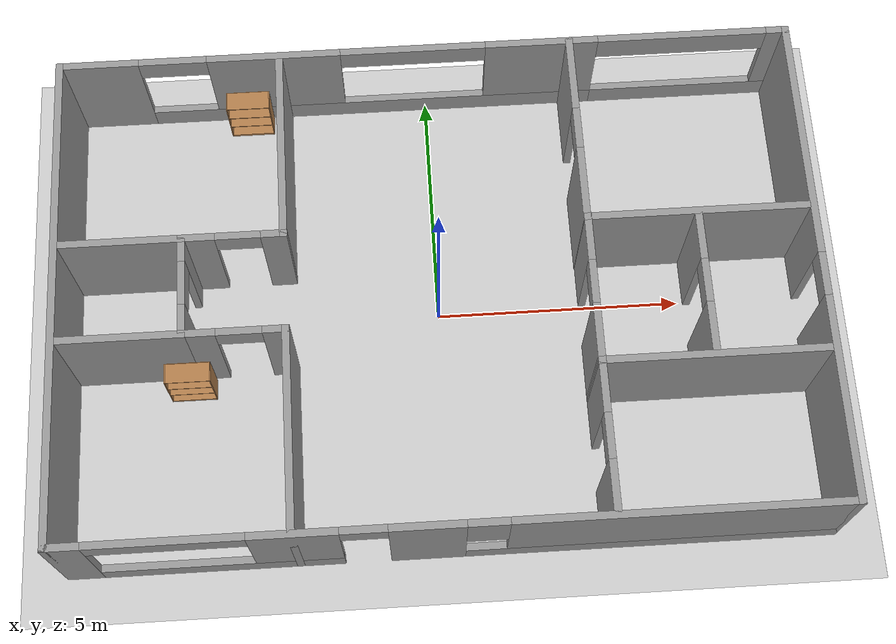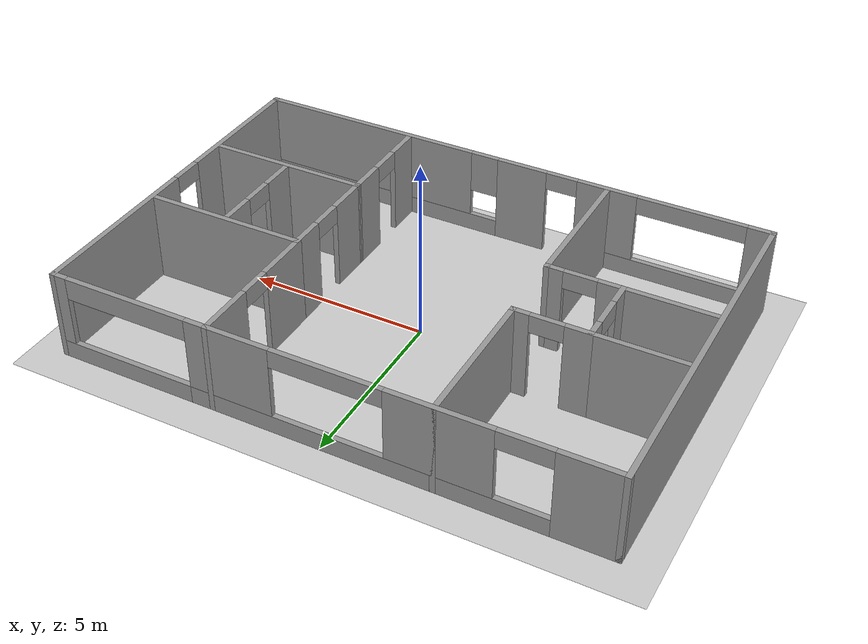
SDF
<sdf version="1.7">
 <world name="default">
  <light name="sun" type="directional">
   <pose>0 0 10 0 -0 0</pose>
   <diffuse>0.8 0.8 0.8 1</diffuse>
   <specular>0.2 0.2 0.2 1</specular>
   <attenuation>
    <range>1000</range>
    <constant>0.9</constant>
    <linear>0.01</linear>
    <quadratic>0.001</quadratic>
   </attenuation>
   <direction>-0.5 0.1 -0.9</direction>
   <spot><inner_angle>0</inner_angle><outer_angle>0</outer_angle><falloff>0</falloff></spot>
  </light>
  <model name="ground_plane">
   <static>1</static>
   <link name="link">
    <collision name="collision">
     <geometry><plane><normal>0 0 1</normal><size>100 100</size></plane></geometry>
     <surface><friction><ode><mu>100</mu><mu2>50</mu2></ode></friction></surface>
    </collision>
    <visual name="visual">
     <cast_shadows>0</cast_shadows>
     <geometry><plane><normal>0 0 1</normal><size>100 100</size></plane></geometry>
     <material>
      <script><uri>file://media/materials/scripts/gazebo.material</uri><name>Gazebo/Grey</name></script>
     </material>
    </visual>
   </link>
  </model>
  <gravity>0 0 -9.8</gravity>
  <magnetic_field>6e-06 2.3e-05 -4.2e-05</magnetic_field>
  <atmosphere type="adiabatic"/>
  <physics type="ode">
   <max_step_size>0.001</max_step_size>
   <real_time_factor>1</real_time_factor>
   <real_time_update_rate>1000</real_time_update_rate>
  </physics>
  <scene><ambient>0.4 0.4 0.4 1</ambient><background>0.7 0.7 0.7 1</background><shadows>1</shadows></scene>
  <audio><device>default</device></audio>
  <spherical_coordinates>
   <surface_model>EARTH_WGS84</surface_model>
   <latitude_deg>0</latitude_deg>
   <longitude_deg>0</longitude_deg>
   <elevation>0</elevation>
   <heading_deg>0</heading_deg>
  </spherical_coordinates>
  <model name="my_room_world">
   <link name="Wall_1">
    <pose>7.5 0 0 0 -0 -1.5708</pose>
    <visual name="Wall_1_Visual_0">
     <pose>-2.52061 0 1.25 0 -0 0</pose>
     <geometry><box><size>5.10878 0.15 2.5</size></box></geometry>
     <material>
      <script><uri>file://media/materials/scripts/gazebo.material</uri><name>Gazebo/Grey</name></script>
      <ambient>1 1 1 1</ambient>
     </material>
     <meta><layer>0</layer></meta>
    </visual>
    <collision name="Wall_1_Collision_0">
     <geometry><box><size>5.10878 0.15 2.5</size></box></geometry>
     <pose>-2.52061 0 1.25 0 -0 0</pose>
    </collision>
    <visual name="Wall_1_Visual_1">
     <pose>3.00439 0 1.25 0 -0 0</pose>
     <geometry><box><size>4.14122 0.15 2.5</size></box></geometry>
     <material>
      <script><uri>file://media/materials/scripts/gazebo.material</uri><name>Gazebo/Grey</name></script>
      <ambient>1 1 1 1</ambient>
     </material>
     <meta><layer>0</layer></meta>
    </visual>
    <collision name="Wall_1_Collision_1">
     <geometry><box><size>4.14122 0.15 2.5</size></box></geometry>
     <pose>3.00439 0 1.25 0 -0 0</pose>
    </collision>
    <visual name="Wall_1_Visual_2">
     <pose>0.483781 0 2.25 0 -0 0</pose>
     <geometry><box><size>0.9 0.15 0.5</size></box></geometry>
     <material>
      <script><uri>file://media/materials/scripts/gazebo.material</uri><name>Gazebo/Grey</name></script>
      <ambient>1 1 1 1</ambient>
     </material>
     <meta><layer>0</layer></meta>
    </visual>
    <collision name="Wall_1_Collision_2">
     <geometry><box><size>0.9 0.15 0.5</size></box></geometry>
     <pose>0.483781 0 2.25 0 -0 0</pose>
    </collision>
   </link>
   <link name="Wall_21">
    <pose>0 -5 0 0 -0 0</pose>
    <visual name="Wall_21_Visual_0">
     <pose>-7.20434 0 1.25 0 -0 0</pose>
     <geometry><box><size>0.74133 0.15 2.5</size></box></geometry>
     <material>
      <script><uri>file://media/materials/scripts/gazebo.material</uri><name>Gazebo/Grey</name></script>
      <ambient>1 1 1 1</ambient>
     </material>
     <meta><layer>0</layer></meta>
    </visual>
    <collision name="Wall_21_Collision_0">
     <geometry><box><size>0.74133 0.15 2.5</size></box></geometry>
     <pose>-7.20434 0 1.25 0 -0 0</pose>
    </collision>
    <visual name="Wall_21_Visual_1">
     <pose>-0.494456 0 1.25 0 -0 0</pose>
     <geometry><box><size>1.45597 0.15 2.5</size></box></geometry>
     <material>
      <script><uri>file://media/materials/scripts/gazebo.material</uri><name>Gazebo/Grey</name></script>
      <ambient>1 1 1 1</ambient>
     </material>
     <meta><layer>0</layer></meta>
    </visual>
    <collision name="Wall_21_Collision_1">
     <geometry><box><size>1.45597 0.15 2.5</size></box></geometry>
     <pose>-0.494456 0 1.25 0 -0 0</pose>
    </collision>
    <visual name="Wall_21_Visual_2">
     <pose>-4.47806 0 0.25 0 -0 0</pose>
     <geometry><box><size>4.71123 0.15 0.5</size></box></geometry>
     <material>
      <script><uri>file://media/materials/scripts/gazebo.material</uri><name>Gazebo/Grey</name></script>
      <ambient>1 1 1 1</ambient>
     </material>
     <meta><layer>0</layer></meta>
    </visual>
    <collision name="Wall_21_Collision_2">
     <geometry><box><size>4.71123 0.15 0.5</size></box></geometry>
     <pose>-4.47806 0 0.25 0 -0 0</pose>
    </collision>
    <visual name="Wall_21_Visual_3">
     <pose>3.90426 0 0.25 0 -0 0</pose>
     <geometry><box><size>7.34147 0.15 0.5</size></box></geometry>
     <material>
      <script><uri>file://media/materials/scripts/gazebo.material</uri><name>Gazebo/Grey</name></script>
      <ambient>1 1 1 1</ambient>
     </material>
     <meta><layer>0</layer></meta>
    </visual>
    <collision name="Wall_21_Collision_3">
     <geometry><box><size>7.34147 0.15 0.5</size></box></geometry>
     <pose>3.90426 0 0.25 0 -0 0</pose>
    </collision>
    <visual name="Wall_21_Visual_4">
     <pose>-2.97805 0 1.5 0 -0 0</pose>
     <geometry><box><size>1.71123 0.15 2</size></box></geometry>
     <material>
      <script><uri>file://media/materials/scripts/gazebo.material</uri><name>Gazebo/Grey</name></script>
      <ambient>1 1 1 1</ambient>
     </material>
     <meta><layer>0</layer></meta>
    </visual>
    <collision name="Wall_21_Collision_4">
     <geometry><box><size>1.71123 0.15 2</size></box></geometry>
     <pose>-2.97805 0 1.5 0 -0 0</pose>
    </collision>
    <visual name="Wall_21_Visual_5">
     <pose>-2.97805 0 1.5 0 -0 0</pose>
     <geometry><box><size>1.71123 0.15 2</size></box></geometry>
     <material>
      <script><uri>file://media/materials/scripts/gazebo.material</uri><name>Gazebo/Grey</name></script>
      <ambient>1 1 1 1</ambient>
     </material>
     <meta><layer>0</layer></meta>
    </visual>
    <collision name="Wall_21_Collision_5">
     <geometry><box><size>1.71123 0.15 2</size></box></geometry>
     <pose>-2.97805 0 1.5 0 -0 0</pose>
    </collision>
    <visual name="Wall_21_Visual_6">
     <pose>4.30426 0 1.5 0 -0 0</pose>
     <geometry><box><size>6.54147 0.15 2</size></box></geometry>
     <material>
      <script><uri>file://media/materials/scripts/gazebo.material</uri><name>Gazebo/Grey</name></script>
      <ambient>1 1 1 1</ambient>
     </material>
     <meta><layer>0</layer></meta>
    </visual>
    <collision name="Wall_21_Collision_6">
     <geometry><box><size>6.54147 0.15 2</size></box></geometry>
     <pose>4.30426 0 1.5 0 -0 0</pose>
    </collision>
    <visual name="Wall_21_Visual_7">
     <pose>0.633528 0 1.9 0 -0 0</pose>
     <geometry><box><size>0.8 0.15 1.2</size></box></geometry>
     <material>
      <script><uri>file://media/materials/scripts/gazebo.material</uri><name>Gazebo/Grey</name></script>
      <ambient>1 1 1 1</ambient>
     </material>
     <meta><layer>0</layer></meta>
    </visual>
    <collision name="Wall_21_Collision_7">
     <geometry><box><size>0.8 0.15 1.2</size></box></geometry>
     <pose>0.633528 0 1.9 0 -0 0</pose>
    </collision>
    <visual name="Wall_21_Visual_8">
     <pose>-5.33367 0 2.25 0 -0 0</pose>
     <geometry><box><size>3 0.15 0.5</size></box></geometry>
     <material>
      <script><uri>file://media/materials/scripts/gazebo.material</uri><name>Gazebo/Grey</name></script>
      <ambient>1 1 1 1</ambient>
     </material>
     <meta><layer>0</layer></meta>
    </visual>
    <collision name="Wall_21_Collision_8">
     <geometry><box><size>3 0.15 0.5</size></box></geometry>
     <pose>-5.33367 0 2.25 0 -0 0</pose>
    </collision>
    <visual name="Wall_21_Visual_9">
     <pose>-1.67244 0 2.25 0 -0 0</pose>
     <geometry><box><size>0.9 0.15 0.5</size></box></geometry>
     <material>
      <script><uri>file://media/materials/scripts/gazebo.material</uri><name>Gazebo/Grey</name></script>
      <ambient>1 1 1 1</ambient>
     </material>
     <meta><layer>0</layer></meta>
    </visual>
    <collision name="Wall_21_Collision_9">
     <geometry><box><size>0.9 0.15 0.5</size></box></geometry>
     <pose>-1.67244 0 2.25 0 -0 0</pose>
    </collision>
    <visual name="Wall_21_Visual_10">
     <pose>-1.67244 0 2.25 0 -0 0</pose>
     <geometry><box><size>0.9 0.15 0.5</size></box></geometry>
     <material>
      <script><uri>file://media/materials/scripts/gazebo.material</uri><name>Gazebo/Grey</name></script>
      <ambient>1 1 1 1</ambient>
     </material>
     <meta><layer>0</layer></meta>
    </visual>
    <collision name="Wall_21_Collision_10">
     <geometry><box><size>0.9 0.15 0.5</size></box></geometry>
     <pose>-1.67244 0 2.25 0 -0 0</pose>
    </collision>
   </link>
   <link name="Wall_23">
    <pose>0 5 0 0 -0 0</pose>
    <visual name="Wall_23_Visual_0">
     <pose>-6.73138 0 1.25 0 -0 0</pose>
     <geometry><box><size>1.68723 0.15 2.5</size></box></geometry>
     <material>
      <script><uri>file://media/materials/scripts/gazebo.material</uri><name>Gazebo/Grey</name></script>
      <ambient>1 1 1 1</ambient>
     </material>
     <meta><layer>0</layer></meta>
    </visual>
    <collision name="Wall_23_Collision_0">
     <geometry><box><size>1.68723 0.15 2.5</size></box></geometry>
     <pose>-6.73138 0 1.25 0 -0 0</pose>
    </collision>
    <visual name="Wall_23_Visual_1">
     <pose>-1.1449 0 0.25 0 -0 0</pose>
     <geometry><box><size>9.48573 0.15 0.5</size></box></geometry>
     <material>
      <script><uri>file://media/materials/scripts/gazebo.material</uri><name>Gazebo/Grey</name></script>
      <ambient>1 1 1 1</ambient>
     </material>
     <meta><layer>0</layer></meta>
    </visual>
    <collision name="Wall_23_Collision_1">
     <geometry><box><size>9.48573 0.15 0.5</size></box></geometry>
     <pose>-1.1449 0 0.25 0 -0 0</pose>
    </collision>
    <visual name="Wall_23_Visual_2">
     <pose>5.58648 0 0.25 0 -0 0</pose>
     <geometry><box><size>3.97704 0.15 0.5</size></box></geometry>
     <material>
      <script><uri>file://media/materials/scripts/gazebo.material</uri><name>Gazebo/Grey</name></script>
      <ambient>1 1 1 1</ambient>
     </material>
     <meta><layer>0</layer></meta>
    </visual>
    <collision name="Wall_23_Collision_2">
     <geometry><box><size>3.97704 0.15 0.5</size></box></geometry>
     <pose>5.58648 0 0.25 0 -0 0</pose>
    </collision>
    <visual name="Wall_23_Visual_3">
     <pose>7.33648 0 1.5 0 -0 0</pose>
     <geometry><box><size>0.477036 0.15 2</size></box></geometry>
     <material>
      <script><uri>file://media/materials/scripts/gazebo.material</uri><name>Gazebo/Grey</name></script>
      <ambient>1 1 1 1</ambient>
     </material>
     <meta><layer>0</layer></meta>
    </visual>
    <collision name="Wall_23_Collision_3">
     <geometry><box><size>0.477036 0.15 2</size></box></geometry>
     <pose>7.33648 0 1.5 0 -0 0</pose>
    </collision>
    <visual name="Wall_23_Visual_4">
     <pose>-3.11255 0 1.5 0 -0 0</pose>
     <geometry><box><size>2.75044 0.15 2</size></box></geometry>
     <material>
      <script><uri>file://media/materials/scripts/gazebo.material</uri><name>Gazebo/Grey</name></script>
      <ambient>1 1 1 1</ambient>
     </material>
     <meta><layer>0</layer></meta>
    </visual>
    <collision name="Wall_23_Collision_4">
     <geometry><box><size>2.75044 0.15 2</size></box></geometry>
     <pose>-3.11255 0 1.5 0 -0 0</pose>
    </collision>
    <visual name="Wall_23_Visual_5">
     <pose>2.43032 0 1.5 0 -0 0</pose>
     <geometry><box><size>2.33529 0.15 2</size></box></geometry>
     <material>
      <script><uri>file://media/materials/scripts/gazebo.material</uri><name>Gazebo/Grey</name></script>
      <ambient>1 1 1 1</ambient>
     </material>
     <meta><layer>0</layer></meta>
    </visual>
    <collision name="Wall_23_Collision_5">
     <geometry><box><size>2.33529 0.15 2</size></box></geometry>
     <pose>2.43032 0 1.5 0 -0 0</pose>
    </collision>
    <visual name="Wall_23_Visual_6">
     <pose>2.43032 0 1.5 0 -0 0</pose>
     <geometry><box><size>2.33529 0.15 2</size></box></geometry>
     <material>
      <script><uri>file://media/materials/scripts/gazebo.material</uri><name>Gazebo/Grey</name></script>
      <ambient>1 1 1 1</ambient>
     </material>
     <meta><layer>0</layer></meta>
    </visual>
    <collision name="Wall_23_Collision_6">
     <geometry><box><size>2.33529 0.15 2</size></box></geometry>
     <pose>2.43032 0 1.5 0 -0 0</pose>
    </collision>
    <visual name="Wall_23_Visual_7">
     <pose>5.34796 0 2.2 0 -0 0</pose>
     <geometry><box><size>3.5 0.15 0.6</size></box></geometry>
     <material>
      <script><uri>file://media/materials/scripts/gazebo.material</uri><name>Gazebo/Grey</name></script>
      <ambient>1 1 1 1</ambient>
     </material>
     <meta><layer>0</layer></meta>
    </visual>
    <collision name="Wall_23_Collision_7">
     <geometry><box><size>3.5 0.15 0.6</size></box></geometry>
     <pose>5.34796 0 2.2 0 -0 0</pose>
    </collision>
    <visual name="Wall_23_Visual_8">
     <pose>5.34796 0 2.2 0 -0 0</pose>
     <geometry><box><size>3.5 0.15 0.6</size></box></geometry>
     <material>
      <script><uri>file://media/materials/scripts/gazebo.material</uri><name>Gazebo/Grey</name></script>
      <ambient>1 1 1 1</ambient>
     </material>
     <meta><layer>0</layer></meta>
    </visual>
    <collision name="Wall_23_Collision_8">
     <geometry><box><size>3.5 0.15 0.6</size></box></geometry>
     <pose>5.34796 0 2.2 0 -0 0</pose>
    </collision>
    <visual name="Wall_23_Visual_9">
     <pose>-5.18777 0 2.25 0 -0 0</pose>
     <geometry><box><size>1.4 0.15 0.5</size></box></geometry>
     <material>
      <script><uri>file://media/materials/scripts/gazebo.material</uri><name>Gazebo/Grey</name></script>
      <ambient>1 1 1 1</ambient>
     </material>
     <meta><layer>0</layer></meta>
    </visual>
    <collision name="Wall_23_Collision_9">
     <geometry><box><size>1.4 0.15 0.5</size></box></geometry>
     <pose>-5.18777 0 2.25 0 -0 0</pose>
    </collision>
    <visual name="Wall_23_Visual_10">
     <pose>-0.237327 0 2.25 0 -0 0</pose>
     <geometry><box><size>3 0.15 0.5</size></box></geometry>
     <material>
      <script><uri>file://media/materials/scripts/gazebo.material</uri><name>Gazebo/Grey</name></script>
      <ambient>1 1 1 1</ambient>
     </material>
     <meta><layer>0</layer></meta>
    </visual>
    <collision name="Wall_23_Collision_10">
     <geometry><box><size>3 0.15 0.5</size></box></geometry>
     <pose>-0.237327 0 2.25 0 -0 0</pose>
    </collision>
   </link>
   <link name="Wall_25">
    <collision name="Wall_25_Collision">
     <geometry><box><size>4.15 0.15 2.5</size></box></geometry>
     <pose>0 0 1.25 0 -0 0</pose>
    </collision>
    <visual name="Wall_25_Visual">
     <pose>0 0 1.25 0 -0 0</pose>
     <geometry><box><size>4.15 0.15 2.5</size></box></geometry>
     <material>
      <script><uri>file://media/materials/scripts/gazebo.material</uri><name>Gazebo/Grey</name></script>
      <ambient>1 1 1 1</ambient>
     </material>
     <meta><layer>0</layer></meta>
    </visual>
    <pose>-3 -3 0 0 -0 -1.5708</pose>
   </link>
   <link name="Wall_51">
    <collision name="Wall_51_Collision">
     <geometry><box><size>2.5 0.15 2.5</size></box></geometry>
     <pose>0 0 1.25 0 -0 0</pose>
    </collision>
    <visual name="Wall_51_Visual">
     <pose>0 0 1.25 0 -0 0</pose>
     <geometry><box><size>2.5 0.15 2.5</size></box></geometry>
     <material>
      <script><uri>file://media/materials/scripts/gazebo.material</uri><name>Gazebo/Grey</name></script>
      <ambient>1 1 1 1</ambient>
     </material>
     <meta><layer>0</layer></meta>
    </visual>
    <pose>-6.175 -1 0 0 -0 3.14159</pose>
   </link>
   <link name="Wall_55">
    <pose>-4 -1 0 0 -0 3.14159</pose>
    <visual name="Wall_35_Visual_0">
     <pose>-0.81367 0 1.25 0 -0 0</pose>
     <geometry><box><size>0.522659 0.15 2.5</size></box></geometry>
     <material>
      <script><uri>file://media/materials/scripts/gazebo.material</uri><name>Gazebo/Grey</name></script>
      <ambient>1 1 1 1</ambient>
     </material>
     <meta><layer>0</layer></meta>
    </visual>
    <collision name="Wall_55_Collision_0">
     <geometry><box><size>0.522659 0.15 2.5</size></box></geometry>
     <pose>-0.81367 0 1.25 0 -0 0</pose>
    </collision>
    <visual name="Wall_55_Visual_1">
     <pose>0.71133 0 1.25 0 -0 0</pose>
     <geometry><box><size>0.727341 0.15 2.5</size></box></geometry>
     <material>
      <script><uri>file://media/materials/scripts/gazebo.material</uri><name>Gazebo/Grey</name></script>
      <ambient>1 1 1 1</ambient>
     </material>
     <meta><layer>0</layer></meta>
    </visual>
    <collision name="Wall_55_Collision_1">
     <geometry><box><size>0.727341 0.15 2.5</size></box></geometry>
     <pose>0.71133 0 1.25 0 -0 0</pose>
    </collision>
    <visual name="Wall_55_Visual_2">
     <pose>-0.102341 0 2.25 0 -0 0</pose>
     <geometry><box><size>0.9 0.15 0.5</size></box></geometry>
     <material>
      <script><uri>file://media/materials/scripts/gazebo.material</uri><name>Gazebo/Grey</name></script>
      <ambient>1 1 1 1</ambient>
     </material>
     <meta><layer>0</layer></meta>
    </visual>
    <collision name="Wall_55_Collision_2">
     <geometry><box><size>0.9 0.15 0.5</size></box></geometry>
     <pose>-0.102341 0 2.25 0 -0 0</pose>
    </collision>
   </link>
   <link name="Wall_29">
    <pose>-5 0 0 0 -0 -1.5708</pose>
    <visual name="Wall_29_Visual_0">
     <pose>-0.792463 0 1.25 0 -0 0</pose>
     <geometry><box><size>0.565074 0.15 2.5</size></box></geometry>
     <material>
      <script><uri>file://media/materials/scripts/gazebo.material</uri><name>Gazebo/Grey</name></script>
      <ambient>1 1 1 1</ambient>
     </material>
     <meta><layer>0</layer></meta>
    </visual>
    <collision name="Wall_29_Collision_0">
     <geometry><box><size>0.565074 0.15 2.5</size></box></geometry>
     <pose>-0.792463 0 1.25 0 -0 0</pose>
    </collision>
    <visual name="Wall_29_Visual_1">
     <pose>0.732537 0 1.25 0 -0 0</pose>
     <geometry><box><size>0.684926 0.15 2.5</size></box></geometry>
     <material>
      <script><uri>file://media/materials/scripts/gazebo.material</uri><name>Gazebo/Grey</name></script>
      <ambient>1 1 1 1</ambient>
     </material>
     <meta><layer>0</layer></meta>
    </visual>
    <collision name="Wall_29_Collision_1">
     <geometry><box><size>0.684926 0.15 2.5</size></box></geometry>
     <pose>0.732537 0 1.25 0 -0 0</pose>
    </collision>
    <visual name="Wall_29_Visual_2">
     <pose>-0.059926 0 2.25 0 -0 0</pose>
     <geometry><box><size>0.9 0.15 0.5</size></box></geometry>
     <material>
      <script><uri>file://media/materials/scripts/gazebo.material</uri><name>Gazebo/Grey</name></script>
      <ambient>1 1 1 1</ambient>
     </material>
     <meta><layer>0</layer></meta>
    </visual>
    <collision name="Wall_29_Collision_2">
     <geometry><box><size>0.9 0.15 0.5</size></box></geometry>
     <pose>-0.059926 0 2.25 0 -0 0</pose>
    </collision>
   </link>
   <link name="Wall_3">
    <collision name="Wall_3_Collision">
     <geometry><box><size>10.15 0.15 2.5</size></box></geometry>
     <pose>0 0 1.25 0 -0 0</pose>
    </collision>
    <visual name="Wall_3_Visual">
     <pose>0 0 1.25 0 -0 0</pose>
     <geometry><box><size>10.15 0.15 2.5</size></box></geometry>
     <material>
      <script><uri>file://media/materials/scripts/gazebo.material</uri><name>Gazebo/Grey</name></script>
      <ambient>1 1 1 1</ambient>
     </material>
     <meta><layer>0</layer></meta>
    </visual>
    <pose>-7.5 0 0 0 -0 -1.5708</pose>
   </link>
   <link name="Wall_31">
    <collision name="Wall_31_Collision">
     <geometry><box><size>2.5 0.15 2.5</size></box></geometry>
     <pose>0 0 1.25 0 -0 0</pose>
    </collision>
    <visual name="Wall_31_Visual">
     <pose>0 0 1.25 0 -0 0</pose>
     <geometry><box><size>2.5 0.15 2.5</size></box></geometry>
     <material>
      <script><uri>file://media/materials/scripts/gazebo.material</uri><name>Gazebo/Grey</name></script>
      <ambient>1 1 1 1</ambient>
     </material>
     <meta><layer>0</layer></meta>
    </visual>
    <pose>-6.175 1 0 0 -0 3.14159</pose>
   </link>
   <link name="Wall_33">
    <collision name="Wall_33_Collision">
     <geometry><box><size>4.15 0.15 2.5</size></box></geometry>
     <pose>0 0 1.25 0 -0 0</pose>
    </collision>
    <visual name="Wall_33_Visual">
     <pose>0 0 1.25 0 -0 0</pose>
     <geometry><box><size>4.15 0.15 2.5</size></box></geometry>
     <material>
      <script><uri>file://media/materials/scripts/gazebo.material</uri><name>Gazebo/Grey</name></script>
      <ambient>1 1 1 1</ambient>
     </material>
     <meta><layer>0</layer></meta>
    </visual>
    <pose>-3 3 0 0 -0 -1.5708</pose>
   </link>
   <link name="Wall_35">
    <pose>-4 1 0 0 -0 3.14159</pose>
    <visual name="Wall_35_Visual_0">
     <pose>-0.81367 0 1.25 0 -0 0</pose>
     <geometry><box><size>0.522659 0.15 2.5</size></box></geometry>
     <material>
      <script><uri>file://media/materials/scripts/gazebo.material</uri><name>Gazebo/Grey</name></script>
      <ambient>1 1 1 1</ambient>
     </material>
     <meta><layer>0</layer></meta>
    </visual>
    <collision name="Wall_35_Collision_0">
     <geometry><box><size>0.522659 0.15 2.5</size></box></geometry>
     <pose>-0.81367 0 1.25 0 -0 0</pose>
    </collision>
    <visual name="Wall_35_Visual_1">
     <pose>0.71133 0 1.25 0 -0 0</pose>
     <geometry><box><size>0.727341 0.15 2.5</size></box></geometry>
     <material>
      <script><uri>file://media/materials/scripts/gazebo.material</uri><name>Gazebo/Grey</name></script>
      <ambient>1 1 1 1</ambient>
     </material>
     <meta><layer>0</layer></meta>
    </visual>
    <collision name="Wall_35_Collision_1">
     <geometry><box><size>0.727341 0.15 2.5</size></box></geometry>
     <pose>0.71133 0 1.25 0 -0 0</pose>
    </collision>
    <visual name="Wall_35_Visual_2">
     <pose>-0.102341 0 2.25 0 -0 0</pose>
     <geometry><box><size>0.9 0.15 0.5</size></box></geometry>
     <material>
      <script><uri>file://media/materials/scripts/gazebo.material</uri><name>Gazebo/Grey</name></script>
      <ambient>1 1 1 1</ambient>
     </material>
     <meta><layer>0</layer></meta>
    </visual>
    <collision name="Wall_35_Collision_2">
     <geometry><box><size>0.9 0.15 0.5</size></box></geometry>
     <pose>-0.102341 0 2.25 0 -0 0</pose>
    </collision>
   </link>
   <link name="Wall_38">
    <pose>3 3 0 0 -0 -1.5708</pose>
    <visual name="Wall_38_Visual_0">
     <pose>-1.24974 0 1.25 0 -0 0</pose>
     <geometry><box><size>1.65052 0.15 2.5</size></box></geometry>
     <material>
      <script><uri>file://media/materials/scripts/gazebo.material</uri><name>Gazebo/Grey</name></script>
      <ambient>1 1 1 1</ambient>
     </material>
     <meta><layer>0</layer></meta>
    </visual>
    <collision name="Wall_38_Collision_0">
     <geometry><box><size>1.65052 0.15 2.5</size></box></geometry>
     <pose>-1.24974 0 1.25 0 -0 0</pose>
    </collision>
    <visual name="Wall_38_Visual_1">
     <pose>1.27526 0 1.25 0 -0 0</pose>
     <geometry><box><size>1.59948 0.15 2.5</size></box></geometry>
     <material>
      <script><uri>file://media/materials/scripts/gazebo.material</uri><name>Gazebo/Grey</name></script>
      <ambient>1 1 1 1</ambient>
     </material>
     <meta><layer>0</layer></meta>
    </visual>
    <collision name="Wall_38_Collision_1">
     <geometry><box><size>1.59948 0.15 2.5</size></box></geometry>
     <pose>1.27526 0 1.25 0 -0 0</pose>
    </collision>
    <visual name="Wall_38_Visual_2">
     <pose>0.025523 0 2.25 0 -0 0</pose>
     <geometry><box><size>0.9 0.15 0.5</size></box></geometry>
     <material>
      <script><uri>file://media/materials/scripts/gazebo.material</uri><name>Gazebo/Grey</name></script>
      <ambient>1 1 1 1</ambient>
     </material>
     <meta><layer>0</layer></meta>
    </visual>
    <collision name="Wall_38_Collision_2">
     <geometry><box><size>0.9 0.15 0.5</size></box></geometry>
     <pose>0.025523 0 2.25 0 -0 0</pose>
    </collision>
   </link>
   <link name="Wall_40">
    <collision name="Wall_40_Collision">
     <geometry><box><size>4.5 0.15 2.5</size></box></geometry>
     <pose>0 0 1.25 0 -0 0</pose>
    </collision>
    <visual name="Wall_40_Visual">
     <pose>0 0 1.25 0 -0 0</pose>
     <geometry><box><size>4.5 0.15 2.5</size></box></geometry>
     <material>
      <script><uri>file://media/materials/scripts/gazebo.material</uri><name>Gazebo/Grey</name></script>
      <ambient>1 1 1 1</ambient>
     </material>
     <meta><layer>0</layer></meta>
    </visual>
    <pose>5.186 1 0 0 -0 0</pose>
   </link>
   <link name="Wall_42">
    <pose>3 -3.5 0 0 -0 -1.5708</pose>
    <visual name="Wall_42_Visual_0">
     <pose>-1.01672 0 1.25 0 -0 0</pose>
     <geometry><box><size>1.11657 0.15 2.5</size></box></geometry>
     <material>
      <script><uri>file://media/materials/scripts/gazebo.material</uri><name>Gazebo/Grey</name></script>
      <ambient>1 1 1 1</ambient>
     </material>
     <meta><layer>0</layer></meta>
    </visual>
    <collision name="Wall_42_Collision_0">
     <geometry><box><size>1.11657 0.15 2.5</size></box></geometry>
     <pose>-1.01672 0 1.25 0 -0 0</pose>
    </collision>
    <visual name="Wall_42_Visual_1">
     <pose>1.00828 0 1.25 0 -0 0</pose>
     <geometry><box><size>1.13343 0.15 2.5</size></box></geometry>
     <material>
      <script><uri>file://media/materials/scripts/gazebo.material</uri><name>Gazebo/Grey</name></script>
      <ambient>1 1 1 1</ambient>
     </material>
     <meta><layer>0</layer></meta>
    </visual>
    <collision name="Wall_42_Collision_1">
     <geometry><box><size>1.13343 0.15 2.5</size></box></geometry>
     <pose>1.00828 0 1.25 0 -0 0</pose>
    </collision>
    <visual name="Wall_42_Visual_2">
     <pose>-0.008435 0 2.25 0 -0 0</pose>
     <geometry><box><size>0.9 0.15 0.5</size></box></geometry>
     <material>
      <script><uri>file://media/materials/scripts/gazebo.material</uri><name>Gazebo/Grey</name></script>
      <ambient>1 1 1 1</ambient>
     </material>
     <meta><layer>0</layer></meta>
    </visual>
    <collision name="Wall_42_Collision_2">
     <geometry><box><size>0.9 0.15 0.5</size></box></geometry>
     <pose>-0.008435 0 2.25 0 -0 0</pose>
    </collision>
   </link>
   <link name="Wall_44">
    <collision name="Wall_44_Collision">
     <geometry><box><size>4.5 0.15 2.5</size></box></geometry>
     <pose>0 0 1.25 0 -0 0</pose>
    </collision>
    <visual name="Wall_44_Visual">
     <pose>0 0 1.25 0 -0 0</pose>
     <geometry><box><size>4.5 0.15 2.5</size></box></geometry>
     <material>
      <script><uri>file://media/materials/scripts/gazebo.material</uri><name>Gazebo/Grey</name></script>
      <ambient>1 1 1 1</ambient>
     </material>
     <meta><layer>0</layer></meta>
    </visual>
    <pose>5.175 -2 0 0 -0 0</pose>
   </link>
   <link name="Wall_47">
    <pose>3.0055 -0.5 0 0 -0 1.56713</pose>
    <visual name="Wall_47_Visual_0">
     <pose>-0.951424 0 1.25 0 -0 0</pose>
     <geometry><box><size>1.24717 0.15 2.5</size></box></geometry>
     <material>
      <script><uri>file://media/materials/scripts/gazebo.material</uri><name>Gazebo/Grey</name></script>
      <ambient>1 1 1 1</ambient>
     </material>
     <meta><layer>0</layer></meta>
    </visual>
    <collision name="Wall_47_Collision_0">
     <geometry><box><size>1.24717 0.15 2.5</size></box></geometry>
     <pose>-0.951424 0 1.25 0 -0 0</pose>
    </collision>
    <visual name="Wall_47_Visual_1">
     <pose>1.07359 0 1.25 0 -0 0</pose>
     <geometry><box><size>1.00285 0.15 2.5</size></box></geometry>
     <material>
      <script><uri>file://media/materials/scripts/gazebo.material</uri><name>Gazebo/Grey</name></script>
      <ambient>1 1 1 1</ambient>
     </material>
     <meta><layer>0</layer></meta>
    </visual>
    <collision name="Wall_47_Collision_1">
     <geometry><box><size>1.00285 0.15 2.5</size></box></geometry>
     <pose>1.07359 0 1.25 0 -0 0</pose>
    </collision>
    <visual name="Wall_47_Visual_2">
     <pose>0.122163 0 2.25 0 -0 0</pose>
     <geometry><box><size>0.9 0.15 0.5</size></box></geometry>
     <material>
      <script><uri>file://media/materials/scripts/gazebo.material</uri><name>Gazebo/Grey</name></script>
      <ambient>1 1 1 1</ambient>
     </material>
     <meta><layer>0</layer></meta>
    </visual>
    <collision name="Wall_47_Collision_2">
     <geometry><box><size>0.9 0.15 0.5</size></box></geometry>
     <pose>0.122163 0 2.25 0 -0 0</pose>
    </collision>
   </link>
   <link name="Wall_49">
    <pose>5.2 -0.431 0 0 -0 -1.5708</pose>
    <visual name="Wall_49_Visual_0">
     <pose>-0.94861 0 1.25 0 -0 0</pose>
     <geometry><box><size>1.10278 0.15 2.5</size></box></geometry>
     <material>
      <script><uri>file://media/materials/scripts/gazebo.material</uri><name>Gazebo/Grey</name></script>
      <ambient>1 1 1 1</ambient>
     </material>
     <meta><layer>0</layer></meta>
    </visual>
    <collision name="Wall_49_Collision_0">
     <geometry><box><size>1.10278 0.15 2.5</size></box></geometry>
     <pose>-0.94861 0 1.25 0 -0 0</pose>
    </collision>
    <visual name="Wall_49_Visual_1">
     <pose>1.00139 0 1.25 0 -0 0</pose>
     <geometry><box><size>0.997219 0.15 2.5</size></box></geometry>
     <material>
      <script><uri>file://media/materials/scripts/gazebo.material</uri><name>Gazebo/Grey</name></script>
      <ambient>1 1 1 1</ambient>
     </material>
     <meta><layer>0</layer></meta>
    </visual>
    <collision name="Wall_49_Collision_1">
     <geometry><box><size>0.997219 0.15 2.5</size></box></geometry>
     <pose>1.00139 0 1.25 0 -0 0</pose>
    </collision>
    <visual name="Wall_49_Visual_2">
     <pose>0.052781 0 2.25 0 -0 0</pose>
     <geometry><box><size>0.9 0.15 0.5</size></box></geometry>
     <material>
      <script><uri>file://media/materials/scripts/gazebo.material</uri><name>Gazebo/Grey</name></script>
      <ambient>1 1 1 1</ambient>
     </material>
     <meta><layer>0</layer></meta>
    </visual>
    <collision name="Wall_49_Collision_2">
     <geometry><box><size>0.9 0.15 0.5</size></box></geometry>
     <pose>0.052781 0 2.25 0 -0 0</pose>
    </collision>
   </link>
   <static>1</static>
  </model>
  <model name="bookshelf">
   <static>1</static>
   <link name="link">
    <inertial><mass>1</mass></inertial>
    <collision name="back">
     <pose>0 0.005 0.6 0 -0 0</pose>
     <geometry><box><size>0.9 0.01 1.2</size></box></geometry>
    </collision>
    <visual name="visual1">
     <pose>0 0.005 0.6 0 -0 0</pose>
     <geometry><box><size>0.9 0.01 1.2</size></box></geometry>
     <material>
      <script><uri>file://media/materials/scripts/gazebo.material</uri><name>Gazebo/Wood</name></script>
     </material>
    </visual>
    <collision name="left_side">
     <pose>0.45 -0.195 0.6 0 -0 0</pose>
     <geometry><box><size>0.02 0.4 1.2</size></box></geometry>
    </collision>
    <visual name="visual2">
     <pose>0.45 -0.195 0.6 0 -0 0</pose>
     <geometry><box><size>0.02 0.4 1.2</size></box></geometry>
     <material>
      <script><uri>file://media/materials/scripts/gazebo.material</uri><name>Gazebo/Wood</name></script>
     </material>
    </visual>
    <collision name="right_side">
     <pose>-0.45 -0.195 0.6 0 -0 0</pose>
     <geometry><box><size>0.02 0.4 1.2</size></box></geometry>
    </collision>
    <visual name="visual3">
     <pose>-0.45 -0.195 0.6 0 -0 0</pose>
     <geometry><box><size>0.02 0.4 1.2</size></box></geometry>
     <material>
      <script><uri>file://media/materials/scripts/gazebo.material</uri><name>Gazebo/Wood</name></script>
     </material>
    </visual>
    <collision name="bottom">
     <pose>0 -0.195 0.03 0 -0 0</pose>
     <geometry><box><size>0.88 0.4 0.06</size></box></geometry>
    </collision>
    <visual name="visual4">
     <pose>0 -0.195 0.03 0 -0 0</pose>
     <geometry><box><size>0.88 0.4 0.06</size></box></geometry>
     <material>
      <script><uri>file://media/materials/scripts/gazebo.material</uri><name>Gazebo/Wood</name></script>
     </material>
    </visual>
    <collision name="top">
     <pose>0 -0.195 1.19 0 -0 0</pose>
     <geometry><box><size>0.88 0.4 0.02</size></box></geometry>
    </collision>
    <visual name="visual5">
     <pose>0 -0.195 1.19 0 -0 0</pose>
     <geometry><box><size>0.88 0.4 0.02</size></box></geometry>
     <material>
      <script><uri>file://media/materials/scripts/gazebo.material</uri><name>Gazebo/Wood</name></script>
     </material>
    </visual>
    <collision name="low_shelf">
     <pose>0 -0.195 0.43 0 -0 0</pose>
     <geometry><box><size>0.88 0.4 0.02</size></box></geometry>
    </collision>
    <visual name="visual6">
     <pose>0 -0.195 0.43 0 -0 0</pose>
     <geometry><box><size>0.88 0.4 0.02</size></box></geometry>
     <material>
      <script><uri>file://media/materials/scripts/gazebo.material</uri><name>Gazebo/Wood</name></script>
     </material>
    </visual>
    <collision name="high_shelf">
     <pose>0 -0.195 0.8 0 -0 0</pose>
     <geometry><box><size>0.88 0.4 0.02</size></box></geometry>
    </collision>
    <visual name="visual7">
     <pose>0 -0.195 0.8 0 -0 0</pose>
     <geometry><box><size>0.88 0.4 0.02</size></box></geometry>
     <material>
      <script><uri>file://media/materials/scripts/gazebo.material</uri><name>Gazebo/Wood</name></script>
     </material>
    </visual>
   </link>
   <pose>-5.07902 -1.13907 0 0 -0 0</pose>
  </model>
  <model name="bookshelf_0">
   <static>1</static>
   <link name="link">
    <inertial><mass>1</mass></inertial>
    <collision name="back">
     <pose>0 0.005 0.6 0 -0 0</pose>
     <geometry><box><size>0.9 0.01 1.2</size></box></geometry>
    </collision>
    <visual name="visual1">
     <pose>0 0.005 0.6 0 -0 0</pose>
     <geometry><box><size>0.9 0.01 1.2</size></box></geometry>
     <material>
      <script><uri>file://media/materials/scripts/gazebo.material</uri><name>Gazebo/Wood</name></script>
     </material>
    </visual>
    <collision name="left_side">
     <pose>0.45 -0.195 0.6 0 -0 0</pose>
     <geometry><box><size>0.02 0.4 1.2</size></box></geometry>
    </collision>
    <visual name="visual2">
     <pose>0.45 -0.195 0.6 0 -0 0</pose>
     <geometry><box><size>0.02 0.4 1.2</size></box></geometry>
     <material>
      <script><uri>file://media/materials/scripts/gazebo.material</uri><name>Gazebo/Wood</name></script>
     </material>
    </visual>
    <collision name="right_side">
     <pose>-0.45 -0.195 0.6 0 -0 0</pose>
     <geometry><box><size>0.02 0.4 1.2</size></box></geometry>
    </collision>
    <visual name="visual3">
     <pose>-0.45 -0.195 0.6 0 -0 0</pose>
     <geometry><box><size>0.02 0.4 1.2</size></box></geometry>
     <material>
      <script><uri>file://media/materials/scripts/gazebo.material</uri><name>Gazebo/Wood</name></script>
     </material>
    </visual>
    <collision name="bottom">
     <pose>0 -0.195 0.03 0 -0 0</pose>
     <geometry><box><size>0.88 0.4 0.06</size></box></geometry>
    </collision>
    <visual name="visual4">
     <pose>0 -0.195 0.03 0 -0 0</pose>
     <geometry><box><size>0.88 0.4 0.06</size></box></geometry>
     <material>
      <script><uri>file://media/materials/scripts/gazebo.material</uri><name>Gazebo/Wood</name></script>
     </material>
    </visual>
    <collision name="top">
     <pose>0 -0.195 1.19 0 -0 0</pose>
     <geometry><box><size>0.88 0.4 0.02</size></box></geometry>
    </collision>
    <visual name="visual5">
     <pose>0 -0.195 1.19 0 -0 0</pose>
     <geometry><box><size>0.88 0.4 0.02</size></box></geometry>
     <material>
      <script><uri>file://media/materials/scripts/gazebo.material</uri><name>Gazebo/Wood</name></script>
     </material>
    </visual>
    <collision name="low_shelf">
     <pose>0 -0.195 0.43 0 -0 0</pose>
     <geometry><box><size>0.88 0.4 0.02</size></box></geometry>
    </collision>
    <visual name="visual6">
     <pose>0 -0.195 0.43 0 -0 0</pose>
     <geometry><box><size>0.88 0.4 0.02</size></box></geometry>
     <material>
      <script><uri>file://media/materials/scripts/gazebo.material</uri><name>Gazebo/Wood</name></script>
     </material>
    </visual>
    <collision name="high_shelf">
     <pose>0 -0.195 0.8 0 -0 0</pose>
     <geometry><box><size>0.88 0.4 0.02</size></box></geometry>
    </collision>
    <visual name="visual7">
     <pose>0 -0.195 0.8 0 -0 0</pose>
     <geometry><box><size>0.88 0.4 0.02</size></box></geometry>
     <material>
      <script><uri>file://media/materials/scripts/gazebo.material</uri><name>Gazebo/Wood</name></script>
     </material>
    </visual>
   </link>
   <pose>-3.78989 4.90445 0 0 -0 0</pose>
  </model>
 </world>
</sdf>
